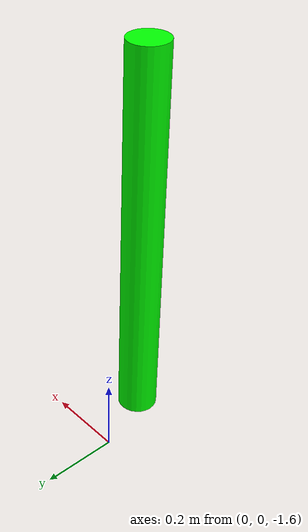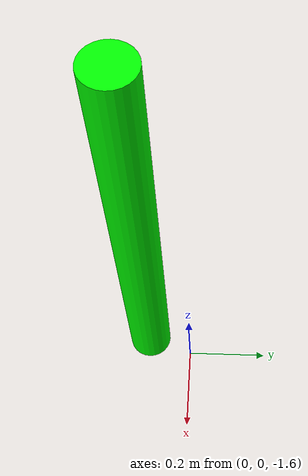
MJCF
<!-- https://mujoco.readthedocs.io/en/latest/overview.html?highlight=hello.xml#examples -->
<mujoco>
  <option gravity = "0 0 -9.81" />
   <worldbody>
      <light diffuse="0 0 0" pos="0 0 10" dir="0 0 -1"/>
         <body pos="0 -0.1 -1" euler="0 0 0">
           <joint name="joint1" type="hinge" axis = "0 -1 0" pos = "0 0 0.5"/>
           <geom type="cylinder" size="0.05 0.5" rgba="0 1 0 1" mass="1"/>
         </body>
    </worldbody>
   <actuator>
     <motor name="torque1" joint="joint1"  gear="1" />
   </actuator>
</mujoco>
